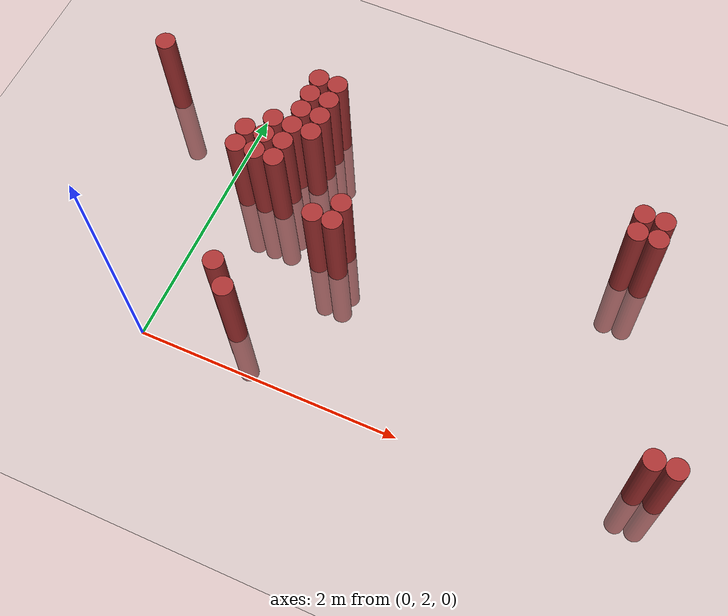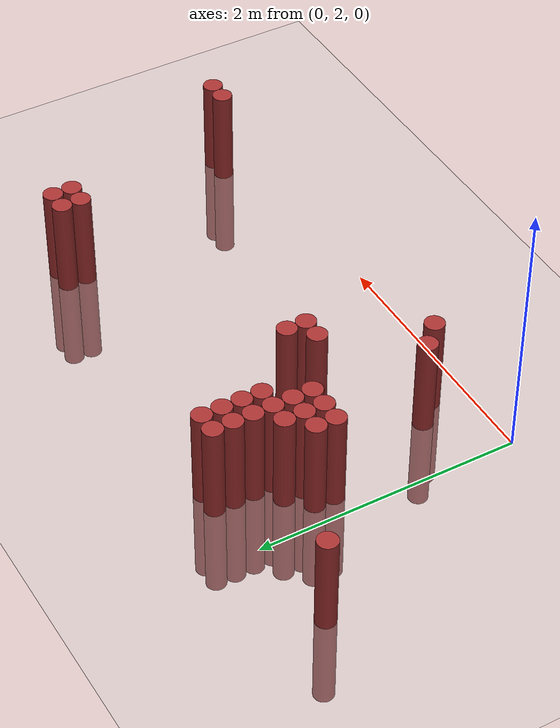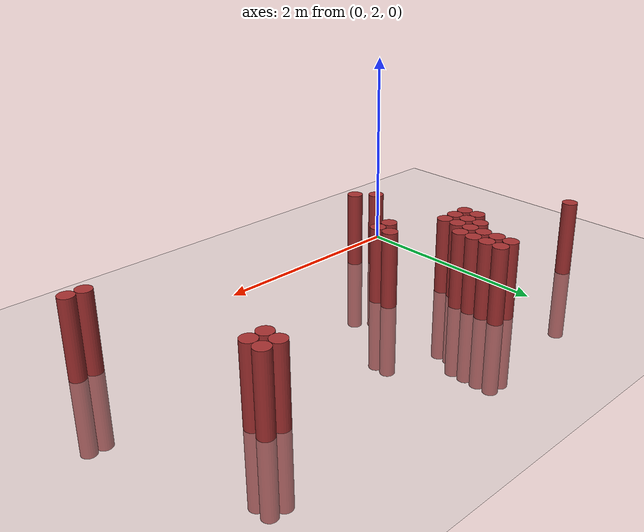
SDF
<sdf version="1.6">
 <world name="default">
  <model name="ground_plane">
   <static>1</static>
   <link name="link">
    <collision name="collision">
     <geometry><plane><normal>0 0 1</normal><size>100 100</size></plane></geometry>
     <surface><friction><ode><mu>100</mu><mu2>50</mu2></ode></friction></surface>
    </collision>
    <visual name="visual">
     <cast_shadows>0</cast_shadows>
     <geometry><plane><normal>0 0 1</normal><size>100 100</size></plane></geometry>
     <material>
      <script><uri>file://media/materials/scripts/gazebo.material</uri><name>Gazebo/Grey</name></script>
     </material>
    </visual>
   </link>
  </model>
  <model name="unit_cylinder_314">
   <static>1</static>
   <pose>-0.725000 3.925000 0.000000 0.000000 0.000000 0.000000</pose>
   <link name="link">
    <inertial>
     <mass>1</mass>
     <inertia><ixx>0.145833</ixx><ixy>0</ixy><ixz>0</ixz><iyy>0.145833</iyy><iyz>0</iyz><izz>0.125</izz></inertia>
    </inertial>
    <collision name="collision">
     <geometry><cylinder><radius>0.075000</radius><length>1.5</length></cylinder></geometry>
    </collision>
    <visual name="visual">
     <geometry><cylinder><radius>0.075000</radius><length>1.5</length></cylinder></geometry>
     <material>
      <ambient>0.648000 0.192000 0.192000 1</ambient>
      <diffuse>0.648000 0.192000 0.192000 1</diffuse>
     </material>
     <material>
      <script><name>Gazebo/Grey</name><uri>file://media/materials/scripts/gazebo.material</uri></script>
     </material>
    </visual>
   </link>
  </model>
  <model name="unit_cylinder_325">
   <static>1</static>
   <pose>0.175000 3.325000 0.000000 0.000000 0.000000 0.000000</pose>
   <link name="link">
    <inertial>
     <mass>1</mass>
     <inertia><ixx>0.145833</ixx><ixy>0</ixy><ixz>0</ixz><iyy>0.145833</iyy><iyz>0</iyz><izz>0.125</izz></inertia>
    </inertial>
    <collision name="collision">
     <geometry><cylinder><radius>0.075000</radius><length>1.5</length></cylinder></geometry>
    </collision>
    <visual name="visual">
     <geometry><cylinder><radius>0.075000</radius><length>1.5</length></cylinder></geometry>
     <material>
      <ambient>0.648000 0.192000 0.192000 1</ambient>
      <diffuse>0.648000 0.192000 0.192000 1</diffuse>
     </material>
     <material>
      <script><name>Gazebo/Grey</name><uri>file://media/materials/scripts/gazebo.material</uri></script>
     </material>
    </visual>
   </link>
  </model>
  <model name="unit_cylinder_326">
   <static>1</static>
   <pose>0.175000 3.475000 0.000000 0.000000 0.000000 0.000000</pose>
   <link name="link">
    <inertial>
     <mass>1</mass>
     <inertia><ixx>0.145833</ixx><ixy>0</ixy><ixz>0</ixz><iyy>0.145833</iyy><iyz>0</iyz><izz>0.125</izz></inertia>
    </inertial>
    <collision name="collision">
     <geometry><cylinder><radius>0.075000</radius><length>1.5</length></cylinder></geometry>
    </collision>
    <visual name="visual">
     <geometry><cylinder><radius>0.075000</radius><length>1.5</length></cylinder></geometry>
     <material>
      <ambient>0.648000 0.192000 0.192000 1</ambient>
      <diffuse>0.648000 0.192000 0.192000 1</diffuse>
     </material>
     <material>
      <script><name>Gazebo/Grey</name><uri>file://media/materials/scripts/gazebo.material</uri></script>
     </material>
    </visual>
   </link>
  </model>
  <model name="unit_cylinder_334">
   <static>1</static>
   <pose>0.325000 3.325000 0.000000 0.000000 0.000000 0.000000</pose>
   <link name="link">
    <inertial>
     <mass>1</mass>
     <inertia><ixx>0.145833</ixx><ixy>0</ixy><ixz>0</ixz><iyy>0.145833</iyy><iyz>0</iyz><izz>0.125</izz></inertia>
    </inertial>
    <collision name="collision">
     <geometry><cylinder><radius>0.075000</radius><length>1.5</length></cylinder></geometry>
    </collision>
    <visual name="visual">
     <geometry><cylinder><radius>0.075000</radius><length>1.5</length></cylinder></geometry>
     <material>
      <ambient>0.648000 0.192000 0.192000 1</ambient>
      <diffuse>0.648000 0.192000 0.192000 1</diffuse>
     </material>
     <material>
      <script><name>Gazebo/Grey</name><uri>file://media/materials/scripts/gazebo.material</uri></script>
     </material>
    </visual>
   </link>
  </model>
  <model name="unit_cylinder_335">
   <static>1</static>
   <pose>0.325000 3.475000 0.000000 0.000000 0.000000 0.000000</pose>
   <link name="link">
    <inertial>
     <mass>1</mass>
     <inertia><ixx>0.145833</ixx><ixy>0</ixy><ixz>0</ixz><iyy>0.145833</iyy><iyz>0</iyz><izz>0.125</izz></inertia>
    </inertial>
    <collision name="collision">
     <geometry><cylinder><radius>0.075000</radius><length>1.5</length></cylinder></geometry>
    </collision>
    <visual name="visual">
     <geometry><cylinder><radius>0.075000</radius><length>1.5</length></cylinder></geometry>
     <material>
      <ambient>0.648000 0.192000 0.192000 1</ambient>
      <diffuse>0.648000 0.192000 0.192000 1</diffuse>
     </material>
     <material>
      <script><name>Gazebo/Grey</name><uri>file://media/materials/scripts/gazebo.material</uri></script>
     </material>
    </visual>
   </link>
  </model>
  <model name="unit_cylinder_336">
   <static>1</static>
   <pose>0.325000 3.625000 0.000000 0.000000 0.000000 0.000000</pose>
   <link name="link">
    <inertial>
     <mass>1</mass>
     <inertia><ixx>0.145833</ixx><ixy>0</ixy><ixz>0</ixz><iyy>0.145833</iyy><iyz>0</iyz><izz>0.125</izz></inertia>
    </inertial>
    <collision name="collision">
     <geometry><cylinder><radius>0.075000</radius><length>1.5</length></cylinder></geometry>
    </collision>
    <visual name="visual">
     <geometry><cylinder><radius>0.075000</radius><length>1.5</length></cylinder></geometry>
     <material>
      <ambient>0.648000 0.192000 0.192000 1</ambient>
      <diffuse>0.648000 0.192000 0.192000 1</diffuse>
     </material>
     <material>
      <script><name>Gazebo/Grey</name><uri>file://media/materials/scripts/gazebo.material</uri></script>
     </material>
    </visual>
   </link>
  </model>
  <model name="unit_cylinder_345">
   <static>1</static>
   <pose>0.475000 2.425000 0.000000 0.000000 0.000000 0.000000</pose>
   <link name="link">
    <inertial>
     <mass>1</mass>
     <inertia><ixx>0.145833</ixx><ixy>0</ixy><ixz>0</ixz><iyy>0.145833</iyy><iyz>0</iyz><izz>0.125</izz></inertia>
    </inertial>
    <collision name="collision">
     <geometry><cylinder><radius>0.075000</radius><length>1.5</length></cylinder></geometry>
    </collision>
    <visual name="visual">
     <geometry><cylinder><radius>0.075000</radius><length>1.5</length></cylinder></geometry>
     <material>
      <ambient>0.648000 0.192000 0.192000 1</ambient>
      <diffuse>0.648000 0.192000 0.192000 1</diffuse>
     </material>
     <material>
      <script><name>Gazebo/Grey</name><uri>file://media/materials/scripts/gazebo.material</uri></script>
     </material>
    </visual>
   </link>
  </model>
  <model name="unit_cylinder_346">
   <static>1</static>
   <pose>0.475000 3.325000 0.000000 0.000000 0.000000 0.000000</pose>
   <link name="link">
    <inertial>
     <mass>1</mass>
     <inertia><ixx>0.145833</ixx><ixy>0</ixy><ixz>0</ixz><iyy>0.145833</iyy><iyz>0</iyz><izz>0.125</izz></inertia>
    </inertial>
    <collision name="collision">
     <geometry><cylinder><radius>0.075000</radius><length>1.5</length></cylinder></geometry>
    </collision>
    <visual name="visual">
     <geometry><cylinder><radius>0.075000</radius><length>1.5</length></cylinder></geometry>
     <material>
      <ambient>0.648000 0.192000 0.192000 1</ambient>
      <diffuse>0.648000 0.192000 0.192000 1</diffuse>
     </material>
     <material>
      <script><name>Gazebo/Grey</name><uri>file://media/materials/scripts/gazebo.material</uri></script>
     </material>
    </visual>
   </link>
  </model>
  <model name="unit_cylinder_347">
   <static>1</static>
   <pose>0.475000 3.475000 0.000000 0.000000 0.000000 0.000000</pose>
   <link name="link">
    <inertial>
     <mass>1</mass>
     <inertia><ixx>0.145833</ixx><ixy>0</ixy><ixz>0</ixz><iyy>0.145833</iyy><iyz>0</iyz><izz>0.125</izz></inertia>
    </inertial>
    <collision name="collision">
     <geometry><cylinder><radius>0.075000</radius><length>1.5</length></cylinder></geometry>
    </collision>
    <visual name="visual">
     <geometry><cylinder><radius>0.075000</radius><length>1.5</length></cylinder></geometry>
     <material>
      <ambient>0.648000 0.192000 0.192000 1</ambient>
      <diffuse>0.648000 0.192000 0.192000 1</diffuse>
     </material>
     <material>
      <script><name>Gazebo/Grey</name><uri>file://media/materials/scripts/gazebo.material</uri></script>
     </material>
    </visual>
   </link>
  </model>
  <model name="unit_cylinder_348">
   <static>1</static>
   <pose>0.475000 3.625000 0.000000 0.000000 0.000000 0.000000</pose>
   <link name="link">
    <inertial>
     <mass>1</mass>
     <inertia><ixx>0.145833</ixx><ixy>0</ixy><ixz>0</ixz><iyy>0.145833</iyy><iyz>0</iyz><izz>0.125</izz></inertia>
    </inertial>
    <collision name="collision">
     <geometry><cylinder><radius>0.075000</radius><length>1.5</length></cylinder></geometry>
    </collision>
    <visual name="visual">
     <geometry><cylinder><radius>0.075000</radius><length>1.5</length></cylinder></geometry>
     <material>
      <ambient>0.648000 0.192000 0.192000 1</ambient>
      <diffuse>0.648000 0.192000 0.192000 1</diffuse>
     </material>
     <material>
      <script><name>Gazebo/Grey</name><uri>file://media/materials/scripts/gazebo.material</uri></script>
     </material>
    </visual>
   </link>
  </model>
  <model name="unit_cylinder_349">
   <static>1</static>
   <pose>0.475000 3.775000 0.000000 0.000000 0.000000 0.000000</pose>
   <link name="link">
    <inertial>
     <mass>1</mass>
     <inertia><ixx>0.145833</ixx><ixy>0</ixy><ixz>0</ixz><iyy>0.145833</iyy><iyz>0</iyz><izz>0.125</izz></inertia>
    </inertial>
    <collision name="collision">
     <geometry><cylinder><radius>0.075000</radius><length>1.5</length></cylinder></geometry>
    </collision>
    <visual name="visual">
     <geometry><cylinder><radius>0.075000</radius><length>1.5</length></cylinder></geometry>
     <material>
      <ambient>0.648000 0.192000 0.192000 1</ambient>
      <diffuse>0.648000 0.192000 0.192000 1</diffuse>
     </material>
     <material>
      <script><name>Gazebo/Grey</name><uri>file://media/materials/scripts/gazebo.material</uri></script>
     </material>
    </visual>
   </link>
  </model>
  <model name="unit_cylinder_350">
   <static>1</static>
   <pose>0.475000 3.925000 0.000000 0.000000 0.000000 0.000000</pose>
   <link name="link">
    <inertial>
     <mass>1</mass>
     <inertia><ixx>0.145833</ixx><ixy>0</ixy><ixz>0</ixz><iyy>0.145833</iyy><iyz>0</iyz><izz>0.125</izz></inertia>
    </inertial>
    <collision name="collision">
     <geometry><cylinder><radius>0.075000</radius><length>1.5</length></cylinder></geometry>
    </collision>
    <visual name="visual">
     <geometry><cylinder><radius>0.075000</radius><length>1.5</length></cylinder></geometry>
     <material>
      <ambient>0.648000 0.192000 0.192000 1</ambient>
      <diffuse>0.648000 0.192000 0.192000 1</diffuse>
     </material>
     <material>
      <script><name>Gazebo/Grey</name><uri>file://media/materials/scripts/gazebo.material</uri></script>
     </material>
    </visual>
   </link>
  </model>
  <model name="unit_cylinder_351">
   <static>1</static>
   <pose>0.475000 4.075000 0.000000 0.000000 0.000000 0.000000</pose>
   <link name="link">
    <inertial>
     <mass>1</mass>
     <inertia><ixx>0.145833</ixx><ixy>0</ixy><ixz>0</ixz><iyy>0.145833</iyy><iyz>0</iyz><izz>0.125</izz></inertia>
    </inertial>
    <collision name="collision">
     <geometry><cylinder><radius>0.075000</radius><length>1.5</length></cylinder></geometry>
    </collision>
    <visual name="visual">
     <geometry><cylinder><radius>0.075000</radius><length>1.5</length></cylinder></geometry>
     <material>
      <ambient>0.648000 0.192000 0.192000 1</ambient>
      <diffuse>0.648000 0.192000 0.192000 1</diffuse>
     </material>
     <material>
      <script><name>Gazebo/Grey</name><uri>file://media/materials/scripts/gazebo.material</uri></script>
     </material>
    </visual>
   </link>
  </model>
  <model name="unit_cylinder_359">
   <static>1</static>
   <pose>0.625000 2.275000 0.000000 0.000000 0.000000 0.000000</pose>
   <link name="link">
    <inertial>
     <mass>1</mass>
     <inertia><ixx>0.145833</ixx><ixy>0</ixy><ixz>0</ixz><iyy>0.145833</iyy><iyz>0</iyz><izz>0.125</izz></inertia>
    </inertial>
    <collision name="collision">
     <geometry><cylinder><radius>0.075000</radius><length>1.5</length></cylinder></geometry>
    </collision>
    <visual name="visual">
     <geometry><cylinder><radius>0.075000</radius><length>1.5</length></cylinder></geometry>
     <material>
      <ambient>0.648000 0.192000 0.192000 1</ambient>
      <diffuse>0.648000 0.192000 0.192000 1</diffuse>
     </material>
     <material>
      <script><name>Gazebo/Grey</name><uri>file://media/materials/scripts/gazebo.material</uri></script>
     </material>
    </visual>
   </link>
  </model>
  <model name="unit_cylinder_360">
   <static>1</static>
   <pose>0.625000 3.625000 0.000000 0.000000 0.000000 0.000000</pose>
   <link name="link">
    <inertial>
     <mass>1</mass>
     <inertia><ixx>0.145833</ixx><ixy>0</ixy><ixz>0</ixz><iyy>0.145833</iyy><iyz>0</iyz><izz>0.125</izz></inertia>
    </inertial>
    <collision name="collision">
     <geometry><cylinder><radius>0.075000</radius><length>1.5</length></cylinder></geometry>
    </collision>
    <visual name="visual">
     <geometry><cylinder><radius>0.075000</radius><length>1.5</length></cylinder></geometry>
     <material>
      <ambient>0.648000 0.192000 0.192000 1</ambient>
      <diffuse>0.648000 0.192000 0.192000 1</diffuse>
     </material>
     <material>
      <script><name>Gazebo/Grey</name><uri>file://media/materials/scripts/gazebo.material</uri></script>
     </material>
    </visual>
   </link>
  </model>
  <model name="unit_cylinder_361">
   <static>1</static>
   <pose>0.625000 3.775000 0.000000 0.000000 0.000000 0.000000</pose>
   <link name="link">
    <inertial>
     <mass>1</mass>
     <inertia><ixx>0.145833</ixx><ixy>0</ixy><ixz>0</ixz><iyy>0.145833</iyy><iyz>0</iyz><izz>0.125</izz></inertia>
    </inertial>
    <collision name="collision">
     <geometry><cylinder><radius>0.075000</radius><length>1.5</length></cylinder></geometry>
    </collision>
    <visual name="visual">
     <geometry><cylinder><radius>0.075000</radius><length>1.5</length></cylinder></geometry>
     <material>
      <ambient>0.648000 0.192000 0.192000 1</ambient>
      <diffuse>0.648000 0.192000 0.192000 1</diffuse>
     </material>
     <material>
      <script><name>Gazebo/Grey</name><uri>file://media/materials/scripts/gazebo.material</uri></script>
     </material>
    </visual>
   </link>
  </model>
  <model name="unit_cylinder_362">
   <static>1</static>
   <pose>0.625000 3.925000 0.000000 0.000000 0.000000 0.000000</pose>
   <link name="link">
    <inertial>
     <mass>1</mass>
     <inertia><ixx>0.145833</ixx><ixy>0</ixy><ixz>0</ixz><iyy>0.145833</iyy><iyz>0</iyz><izz>0.125</izz></inertia>
    </inertial>
    <collision name="collision">
     <geometry><cylinder><radius>0.075000</radius><length>1.5</length></cylinder></geometry>
    </collision>
    <visual name="visual">
     <geometry><cylinder><radius>0.075000</radius><length>1.5</length></cylinder></geometry>
     <material>
      <ambient>0.648000 0.192000 0.192000 1</ambient>
      <diffuse>0.648000 0.192000 0.192000 1</diffuse>
     </material>
     <material>
      <script><name>Gazebo/Grey</name><uri>file://media/materials/scripts/gazebo.material</uri></script>
     </material>
    </visual>
   </link>
  </model>
  <model name="unit_cylinder_363">
   <static>1</static>
   <pose>0.625000 4.075000 0.000000 0.000000 0.000000 0.000000</pose>
   <link name="link">
    <inertial>
     <mass>1</mass>
     <inertia><ixx>0.145833</ixx><ixy>0</ixy><ixz>0</ixz><iyy>0.145833</iyy><iyz>0</iyz><izz>0.125</izz></inertia>
    </inertial>
    <collision name="collision">
     <geometry><cylinder><radius>0.075000</radius><length>1.5</length></cylinder></geometry>
    </collision>
    <visual name="visual">
     <geometry><cylinder><radius>0.075000</radius><length>1.5</length></cylinder></geometry>
     <material>
      <ambient>0.648000 0.192000 0.192000 1</ambient>
      <diffuse>0.648000 0.192000 0.192000 1</diffuse>
     </material>
     <material>
      <script><name>Gazebo/Grey</name><uri>file://media/materials/scripts/gazebo.material</uri></script>
     </material>
    </visual>
   </link>
  </model>
  <model name="unit_cylinder_380">
   <static>1</static>
   <pose>0.925000 3.025000 0.000000 0.000000 0.000000 0.000000</pose>
   <link name="link">
    <inertial>
     <mass>1</mass>
     <inertia><ixx>0.145833</ixx><ixy>0</ixy><ixz>0</ixz><iyy>0.145833</iyy><iyz>0</iyz><izz>0.125</izz></inertia>
    </inertial>
    <collision name="collision">
     <geometry><cylinder><radius>0.075000</radius><length>1.5</length></cylinder></geometry>
    </collision>
    <visual name="visual">
     <geometry><cylinder><radius>0.075000</radius><length>1.5</length></cylinder></geometry>
     <material>
      <ambient>0.648000 0.192000 0.192000 1</ambient>
      <diffuse>0.648000 0.192000 0.192000 1</diffuse>
     </material>
     <material>
      <script><name>Gazebo/Grey</name><uri>file://media/materials/scripts/gazebo.material</uri></script>
     </material>
    </visual>
   </link>
  </model>
  <model name="unit_cylinder_383">
   <static>1</static>
   <pose>1.075000 3.025000 0.000000 0.000000 0.000000 0.000000</pose>
   <link name="link">
    <inertial>
     <mass>1</mass>
     <inertia><ixx>0.145833</ixx><ixy>0</ixy><ixz>0</ixz><iyy>0.145833</iyy><iyz>0</iyz><izz>0.125</izz></inertia>
    </inertial>
    <collision name="collision">
     <geometry><cylinder><radius>0.075000</radius><length>1.5</length></cylinder></geometry>
    </collision>
    <visual name="visual">
     <geometry><cylinder><radius>0.075000</radius><length>1.5</length></cylinder></geometry>
     <material>
      <ambient>0.648000 0.192000 0.192000 1</ambient>
      <diffuse>0.648000 0.192000 0.192000 1</diffuse>
     </material>
     <material>
      <script><name>Gazebo/Grey</name><uri>file://media/materials/scripts/gazebo.material</uri></script>
     </material>
    </visual>
   </link>
  </model>
  <model name="unit_cylinder_384">
   <static>1</static>
   <pose>1.075000 3.175000 0.000000 0.000000 0.000000 0.000000</pose>
   <link name="link">
    <inertial>
     <mass>1</mass>
     <inertia><ixx>0.145833</ixx><ixy>0</ixy><ixz>0</ixz><iyy>0.145833</iyy><iyz>0</iyz><izz>0.125</izz></inertia>
    </inertial>
    <collision name="collision">
     <geometry><cylinder><radius>0.075000</radius><length>1.5</length></cylinder></geometry>
    </collision>
    <visual name="visual">
     <geometry><cylinder><radius>0.075000</radius><length>1.5</length></cylinder></geometry>
     <material>
      <ambient>0.648000 0.192000 0.192000 1</ambient>
      <diffuse>0.648000 0.192000 0.192000 1</diffuse>
     </material>
     <material>
      <script><name>Gazebo/Grey</name><uri>file://media/materials/scripts/gazebo.material</uri></script>
     </material>
    </visual>
   </link>
  </model>
  <model name="unit_cylinder_406">
   <static>1</static>
   <pose>3.025000 3.775000 0.000000 0.000000 0.000000 0.000000</pose>
   <link name="link">
    <inertial>
     <mass>1</mass>
     <inertia><ixx>0.145833</ixx><ixy>0</ixy><ixz>0</ixz><iyy>0.145833</iyy><iyz>0</iyz><izz>0.125</izz></inertia>
    </inertial>
    <collision name="collision">
     <geometry><cylinder><radius>0.075000</radius><length>1.5</length></cylinder></geometry>
    </collision>
    <visual name="visual">
     <geometry><cylinder><radius>0.075000</radius><length>1.5</length></cylinder></geometry>
     <material>
      <ambient>0.648000 0.192000 0.192000 1</ambient>
      <diffuse>0.648000 0.192000 0.192000 1</diffuse>
     </material>
     <material>
      <script><name>Gazebo/Grey</name><uri>file://media/materials/scripts/gazebo.material</uri></script>
     </material>
    </visual>
   </link>
  </model>
  <model name="unit_cylinder_407">
   <static>1</static>
   <pose>3.025000 3.925000 0.000000 0.000000 0.000000 0.000000</pose>
   <link name="link">
    <inertial>
     <mass>1</mass>
     <inertia><ixx>0.145833</ixx><ixy>0</ixy><ixz>0</ixz><iyy>0.145833</iyy><iyz>0</iyz><izz>0.125</izz></inertia>
    </inertial>
    <collision name="collision">
     <geometry><cylinder><radius>0.075000</radius><length>1.5</length></cylinder></geometry>
    </collision>
    <visual name="visual">
     <geometry><cylinder><radius>0.075000</radius><length>1.5</length></cylinder></geometry>
     <material>
      <ambient>0.648000 0.192000 0.192000 1</ambient>
      <diffuse>0.648000 0.192000 0.192000 1</diffuse>
     </material>
     <material>
      <script><name>Gazebo/Grey</name><uri>file://media/materials/scripts/gazebo.material</uri></script>
     </material>
    </visual>
   </link>
  </model>
  <model name="unit_cylinder_412">
   <static>1</static>
   <pose>3.175000 3.775000 0.000000 0.000000 0.000000 0.000000</pose>
   <link name="link">
    <inertial>
     <mass>1</mass>
     <inertia><ixx>0.145833</ixx><ixy>0</ixy><ixz>0</ixz><iyy>0.145833</iyy><iyz>0</iyz><izz>0.125</izz></inertia>
    </inertial>
    <collision name="collision">
     <geometry><cylinder><radius>0.075000</radius><length>1.5</length></cylinder></geometry>
    </collision>
    <visual name="visual">
     <geometry><cylinder><radius>0.075000</radius><length>1.5</length></cylinder></geometry>
     <material>
      <ambient>0.648000 0.192000 0.192000 1</ambient>
      <diffuse>0.648000 0.192000 0.192000 1</diffuse>
     </material>
     <material>
      <script><name>Gazebo/Grey</name><uri>file://media/materials/scripts/gazebo.material</uri></script>
     </material>
    </visual>
   </link>
  </model>
  <model name="unit_cylinder_413">
   <static>1</static>
   <pose>3.175000 3.925000 0.000000 0.000000 0.000000 0.000000</pose>
   <link name="link">
    <inertial>
     <mass>1</mass>
     <inertia><ixx>0.145833</ixx><ixy>0</ixy><ixz>0</ixz><iyy>0.145833</iyy><iyz>0</iyz><izz>0.125</izz></inertia>
    </inertial>
    <collision name="collision">
     <geometry><cylinder><radius>0.075000</radius><length>1.5</length></cylinder></geometry>
    </collision>
    <visual name="visual">
     <geometry><cylinder><radius>0.075000</radius><length>1.5</length></cylinder></geometry>
     <material>
      <ambient>0.648000 0.192000 0.192000 1</ambient>
      <diffuse>0.648000 0.192000 0.192000 1</diffuse>
     </material>
     <material>
      <script><name>Gazebo/Grey</name><uri>file://media/materials/scripts/gazebo.material</uri></script>
     </material>
    </visual>
   </link>
  </model>
  <model name="unit_cylinder_419">
   <static>1</static>
   <pose>3.625000 2.275000 0.000000 0.000000 0.000000 0.000000</pose>
   <link name="link">
    <inertial>
     <mass>1</mass>
     <inertia><ixx>0.145833</ixx><ixy>0</ixy><ixz>0</ixz><iyy>0.145833</iyy><iyz>0</iyz><izz>0.125</izz></inertia>
    </inertial>
    <collision name="collision">
     <geometry><cylinder><radius>0.075000</radius><length>1.5</length></cylinder></geometry>
    </collision>
    <visual name="visual">
     <geometry><cylinder><radius>0.075000</radius><length>1.5</length></cylinder></geometry>
     <material>
      <ambient>0.648000 0.192000 0.192000 1</ambient>
      <diffuse>0.648000 0.192000 0.192000 1</diffuse>
     </material>
     <material>
      <script><name>Gazebo/Grey</name><uri>file://media/materials/scripts/gazebo.material</uri></script>
     </material>
    </visual>
   </link>
  </model>
  <model name="unit_cylinder_430">
   <static>1</static>
   <pose>3.775000 2.275000 0.000000 0.000000 0.000000 0.000000</pose>
   <link name="link">
    <inertial>
     <mass>1</mass>
     <inertia><ixx>0.145833</ixx><ixy>0</ixy><ixz>0</ixz><iyy>0.145833</iyy><iyz>0</iyz><izz>0.125</izz></inertia>
    </inertial>
    <collision name="collision">
     <geometry><cylinder><radius>0.075000</radius><length>1.5</length></cylinder></geometry>
    </collision>
    <visual name="visual">
     <geometry><cylinder><radius>0.075000</radius><length>1.5</length></cylinder></geometry>
     <material>
      <ambient>0.648000 0.192000 0.192000 1</ambient>
      <diffuse>0.648000 0.192000 0.192000 1</diffuse>
     </material>
     <material>
      <script><name>Gazebo/Grey</name><uri>file://media/materials/scripts/gazebo.material</uri></script>
     </material>
    </visual>
   </link>
  </model>
 </world>
</sdf>
